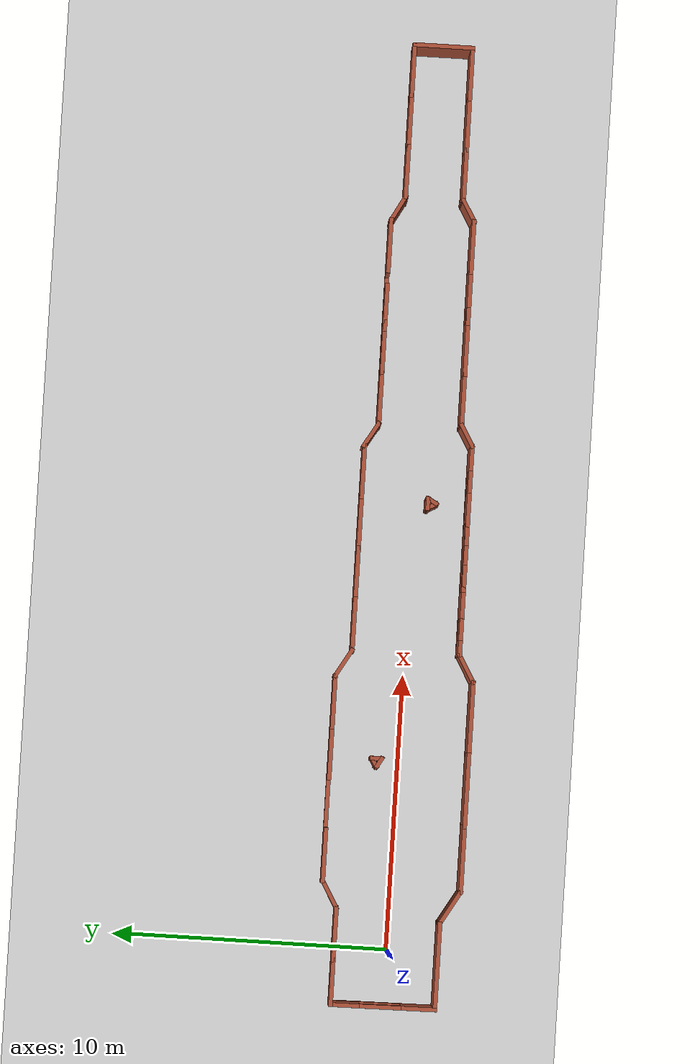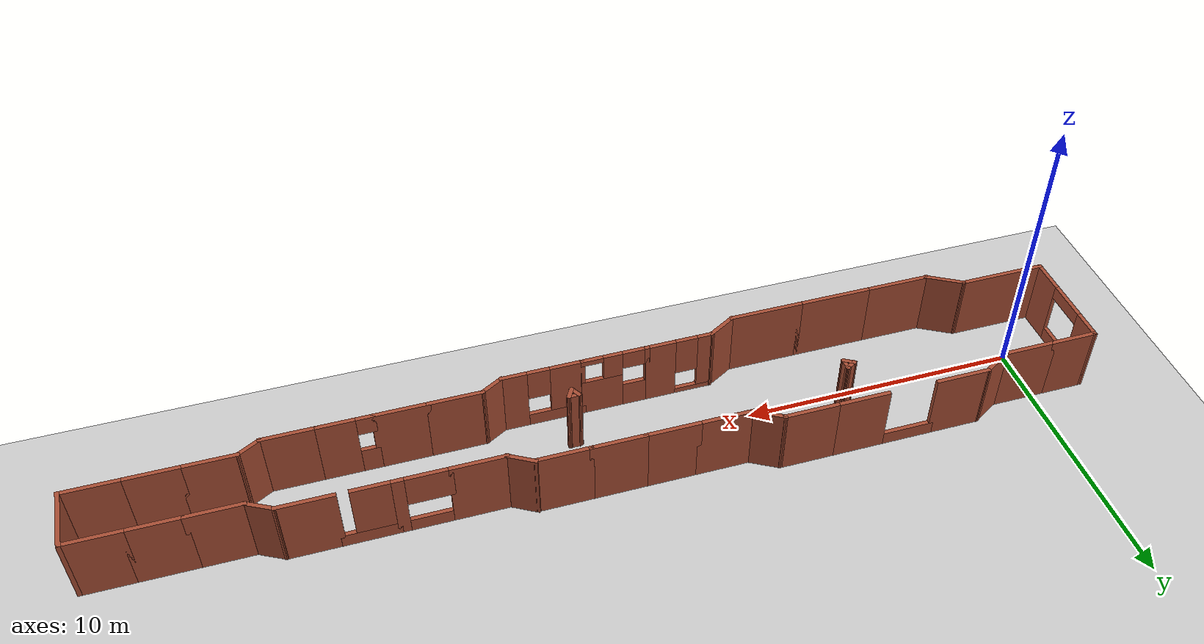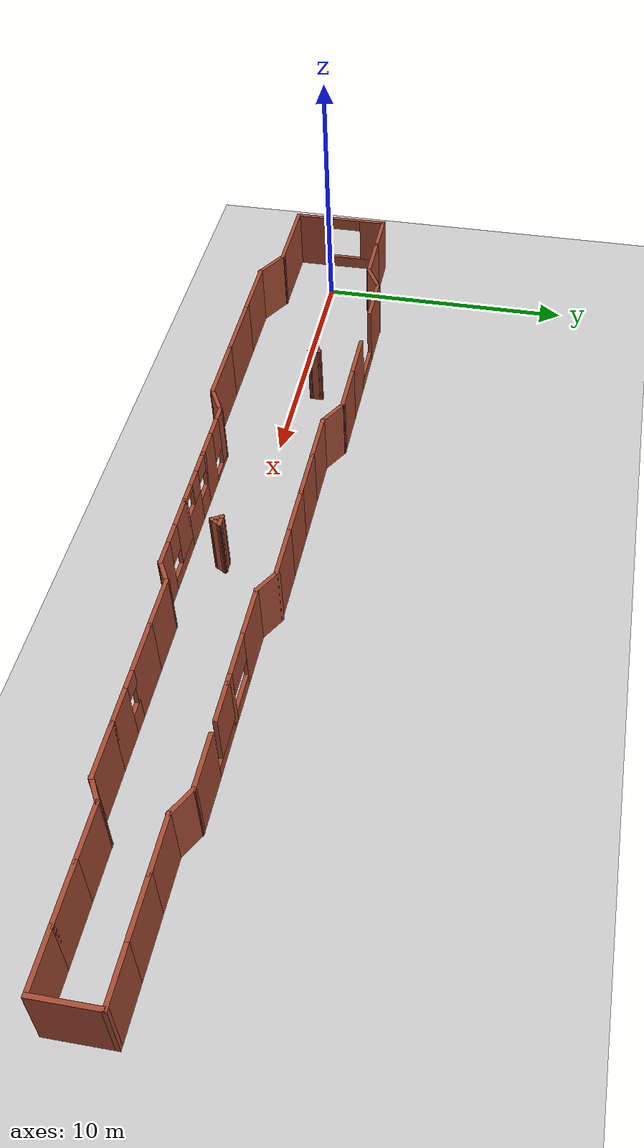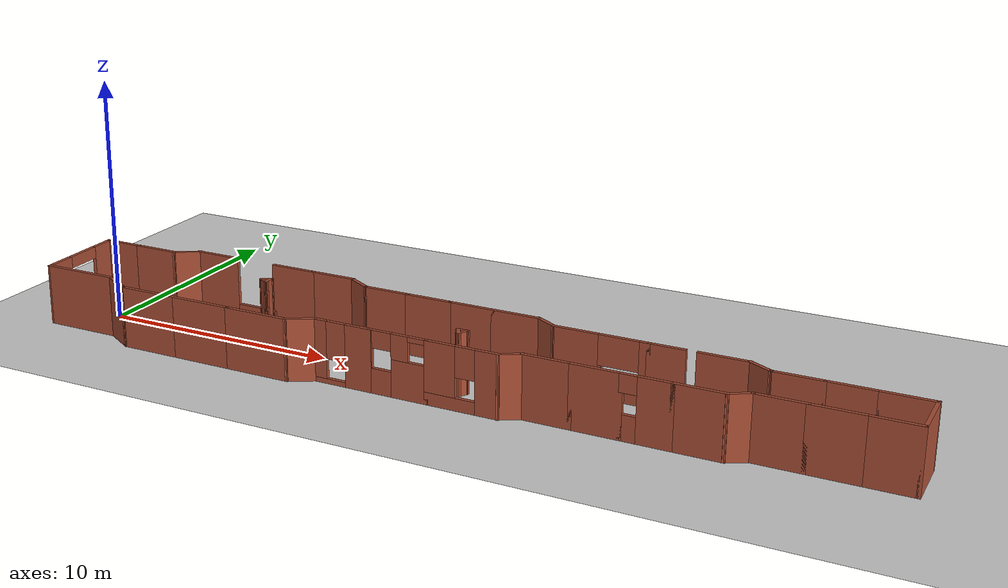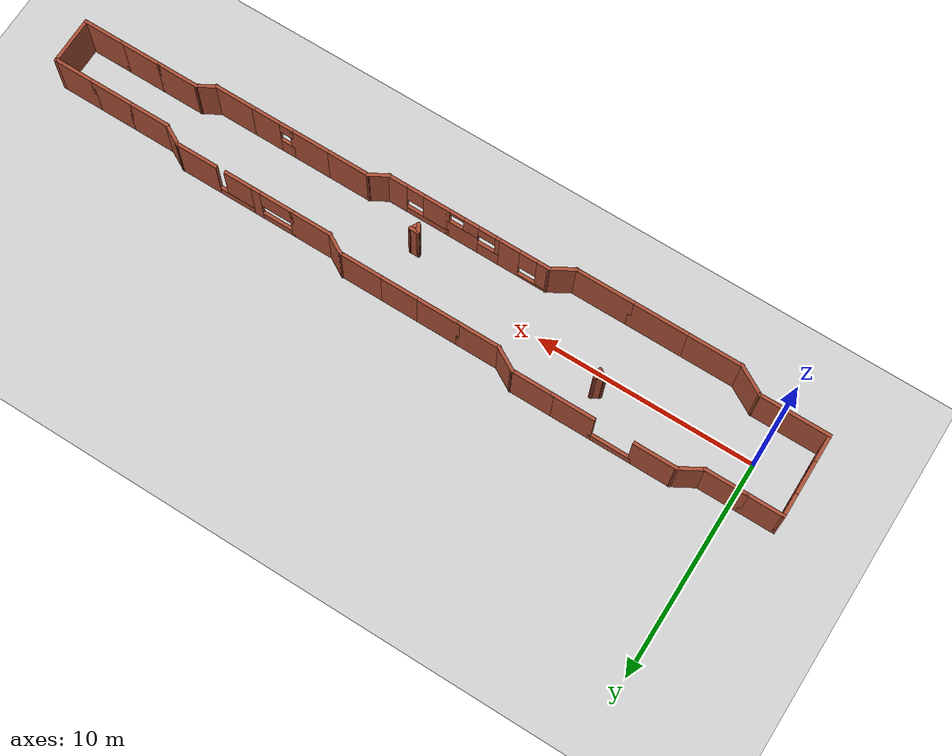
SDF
<sdf version="1.7">
 <world name="default">
  <light name="sun" type="directional">
   <pose>0 0 10 0 -0 0</pose>
   <diffuse>0.8 0.8 0.8 1</diffuse>
   <specular>0.2 0.2 0.2 1</specular>
   <attenuation>
    <range>1000</range>
    <constant>0.9</constant>
    <linear>0.01</linear>
    <quadratic>0.001</quadratic>
   </attenuation>
   <direction>-0.5 0.1 -0.9</direction>
   <spot><inner_angle>0</inner_angle><outer_angle>0</outer_angle><falloff>0</falloff></spot>
  </light>
  <model name="ground_plane">
   <static>1</static>
   <link name="link">
    <collision name="collision">
     <geometry><plane><normal>0 0 1</normal><size>100 100</size></plane></geometry>
     <surface>
      <contact><collide_bitmask>65535</collide_bitmask></contact>
      <friction><ode><mu>100</mu><mu2>50</mu2></ode></friction>
     </surface>
    </collision>
    <visual name="visual">
     <cast_shadows>0</cast_shadows>
     <geometry><plane><normal>0 0 1</normal><size>100 100</size></plane></geometry>
     <material>
      <script><uri>file://media/materials/scripts/gazebo.material</uri><name>Gazebo/Grey</name></script>
     </material>
    </visual>
   </link>
  </model>
  <gravity>0 0 -9.8</gravity>
  <magnetic_field>6e-06 2.3e-05 -4.2e-05</magnetic_field>
  <atmosphere type="adiabatic"/>
  <physics type="ode">
   <max_step_size>0.001</max_step_size>
   <real_time_factor>1</real_time_factor>
   <real_time_update_rate>1000</real_time_update_rate>
  </physics>
  <scene><ambient>0.4 0.4 0.4 1</ambient><background>0.7 0.7 0.7 1</background><shadows>1</shadows></scene>
  <spherical_coordinates>
   <surface_model>EARTH_WGS84</surface_model>
   <latitude_deg>0</latitude_deg>
   <longitude_deg>0</longitude_deg>
   <elevation>0</elevation>
   <heading_deg>0</heading_deg>
  </spherical_coordinates>
  <model name="teste_1">
   <pose>15.4066 0 0 0 -0 3.14159</pose>
   <link name="Wall_10">
    <pose>-6.36052 -1.47773 0 0 -0 0</pose>
    <visual name="Wall_10_Visual_0">
     <pose>-0.788416 0 1.25 0 -0 0</pose>
     <geometry><box><size>0.423168 0.15 2.5</size></box></geometry>
     <material>
      <script><uri>file://media/materials/scripts/gazebo.material</uri><name>Gazebo/Bricks</name></script>
      <ambient>1 1 1 1</ambient>
     </material>
     <meta><layer>0</layer></meta>
    </visual>
    <collision name="Wall_10_Collision_0">
     <geometry><box><size>0.423168 0.15 2.5</size></box></geometry>
     <pose>-0.788416 0 1.25 0 -0 0</pose>
    </collision>
    <visual name="Wall_10_Visual_1">
     <pose>0.211584 0 0.25 0 -0 0</pose>
     <geometry><box><size>1.57683 0.15 0.5</size></box></geometry>
     <material>
      <script><uri>file://media/materials/scripts/gazebo.material</uri><name>Gazebo/Bricks</name></script>
      <ambient>1 1 1 1</ambient>
     </material>
     <meta><layer>0</layer></meta>
    </visual>
    <collision name="Wall_10_Collision_1">
     <geometry><box><size>1.57683 0.15 0.5</size></box></geometry>
     <pose>0.211584 0 0.25 0 -0 0</pose>
    </collision>
    <visual name="Wall_10_Visual_2">
     <pose>0.211584 0 1.9 0 -0 0</pose>
     <geometry><box><size>1.57683 0.15 1.2</size></box></geometry>
     <material>
      <script><uri>file://media/materials/scripts/gazebo.material</uri><name>Gazebo/Bricks</name></script>
      <ambient>1 1 1 1</ambient>
     </material>
     <meta><layer>0</layer></meta>
    </visual>
    <collision name="Wall_10_Collision_2">
     <geometry><box><size>1.57683 0.15 1.2</size></box></geometry>
     <pose>0.211584 0 1.9 0 -0 0</pose>
    </collision>
   </link>
   <link name="Wall_11">
    <collision name="Wall_11_Collision">
     <geometry><box><size>2 0.15 2.5</size></box></geometry>
     <pose>0 0 1.25 0 -0 0</pose>
    </collision>
    <visual name="Wall_11_Visual">
     <pose>0 0 1.25 0 -0 0</pose>
     <geometry><box><size>2 0.15 2.5</size></box></geometry>
     <material>
      <script><uri>file://media/materials/scripts/gazebo.material</uri><name>Gazebo/Bricks</name></script>
      <ambient>1 1 1 1</ambient>
     </material>
     <meta><layer>0</layer></meta>
    </visual>
    <pose>-4.51052 -1.47773 0 0 -0 0</pose>
   </link>
   <link name="Wall_12">
    <collision name="Wall_12_Collision">
     <geometry><box><size>1.10409 0.15 2.5</size></box></geometry>
     <pose>0 0 1.25 0 -0 0</pose>
    </collision>
    <visual name="Wall_12_Visual">
     <pose>0 0 1.25 0 -0 0</pose>
     <geometry><box><size>1.10409 0.15 2.5</size></box></geometry>
     <material>
      <script><uri>file://media/materials/scripts/gazebo.material</uri><name>Gazebo/Bricks</name></script>
      <ambient>1 1 1 1</ambient>
     </material>
     <meta><layer>0</layer></meta>
    </visual>
    <pose>-3.175 -1.72073 0 0 -0 -0.534466</pose>
   </link>
   <link name="Wall_14">
    <collision name="Wall_14_Collision">
     <geometry><box><size>2 0.15 2.5</size></box></geometry>
     <pose>0 0 1.25 0 -0 0</pose>
    </collision>
    <visual name="Wall_14_Visual">
     <pose>0 0 1.25 0 -0 0</pose>
     <geometry><box><size>2 0.15 2.5</size></box></geometry>
     <material>
      <script><uri>file://media/materials/scripts/gazebo.material</uri><name>Gazebo/Bricks</name></script>
      <ambient>1 1 1 1</ambient>
     </material>
     <meta><layer>0</layer></meta>
    </visual>
    <pose>-1.83948 -1.93713 0 0 -0 0</pose>
   </link>
   <link name="Wall_16">
    <collision name="Wall_16_Collision">
     <geometry><box><size>2 0.15 2.5</size></box></geometry>
     <pose>0 0 1.25 0 -0 0</pose>
    </collision>
    <visual name="Wall_16_Visual">
     <pose>0 0 1.25 0 -0 0</pose>
     <geometry><box><size>2 0.15 2.5</size></box></geometry>
     <material>
      <script><uri>file://media/materials/scripts/gazebo.material</uri><name>Gazebo/Bricks</name></script>
      <ambient>1 1 1 1</ambient>
     </material>
     <meta><layer>0</layer></meta>
    </visual>
    <pose>0.010518 -1.93713 0 0 -0 0</pose>
   </link>
   <link name="Wall_17">
    <collision name="Wall_17_Collision">
     <geometry><box><size>2 0.15 2.5</size></box></geometry>
     <pose>0 0 1.25 0 -0 0</pose>
    </collision>
    <visual name="Wall_17_Visual">
     <pose>0 0 1.25 0 -0 0</pose>
     <geometry><box><size>2 0.15 2.5</size></box></geometry>
     <material>
      <script><uri>file://media/materials/scripts/gazebo.material</uri><name>Gazebo/Bricks</name></script>
      <ambient>1 1 1 1</ambient>
     </material>
     <meta><layer>0</layer></meta>
    </visual>
    <pose>1.86052 -1.93713 0 0 -0 0</pose>
   </link>
   <link name="Wall_18">
    <collision name="Wall_18_Collision">
     <geometry><box><size>2 0.15 2.5</size></box></geometry>
     <pose>0 0 1.25 0 -0 0</pose>
    </collision>
    <visual name="Wall_18_Visual">
     <pose>0 0 1.25 0 -0 0</pose>
     <geometry><box><size>2 0.15 2.5</size></box></geometry>
     <material>
      <script><uri>file://media/materials/scripts/gazebo.material</uri><name>Gazebo/Bricks</name></script>
      <ambient>1 1 1 1</ambient>
     </material>
     <meta><layer>0</layer></meta>
    </visual>
    <pose>3.71052 -1.93713 0 0 -0 0</pose>
   </link>
   <link name="Wall_19">
    <collision name="Wall_19_Collision">
     <geometry><box><size>1.25 0.15 2.5</size></box></geometry>
     <pose>0 0 1.25 0 -0 0</pose>
    </collision>
    <visual name="Wall_19_Visual">
     <pose>0 0 1.25 0 -0 0</pose>
     <geometry><box><size>1.25 0.15 2.5</size></box></geometry>
     <material>
      <script><uri>file://media/materials/scripts/gazebo.material</uri><name>Gazebo/Bricks</name></script>
      <ambient>1 1 1 1</ambient>
     </material>
     <meta><layer>0</layer></meta>
    </visual>
    <pose>5.11183 -2.21213 0 0 -0 -0.523599</pose>
   </link>
   <link name="Wall_2">
    <collision name="Wall_2_Collision">
     <geometry><box><size>2 0.15 2.5</size></box></geometry>
     <pose>0 0 1.25 0 -0 0</pose>
    </collision>
    <visual name="Wall_2_Visual">
     <pose>0 0 1.25 0 -0 0</pose>
     <geometry><box><size>2 0.15 2.5</size></box></geometry>
     <material>
      <script><uri>file://media/materials/scripts/gazebo.material</uri><name>Gazebo/Bricks</name></script>
      <ambient>1 1 1 1</ambient>
     </material>
     <meta><layer>0</layer></meta>
    </visual>
    <pose>-16.4665 -1.01287 0 0 -0 0</pose>
   </link>
   <link name="Wall_20">
    <collision name="Wall_20_Collision">
     <geometry><box><size>2 0.15 2.5</size></box></geometry>
     <pose>0 0 1.25 0 -0 0</pose>
    </collision>
    <visual name="Wall_20_Visual">
     <pose>0 0 1.25 0 -0 0</pose>
     <geometry><box><size>2 0.15 2.5</size></box></geometry>
     <material>
      <script><uri>file://media/materials/scripts/gazebo.material</uri><name>Gazebo/Bricks</name></script>
      <ambient>1 1 1 1</ambient>
     </material>
     <meta><layer>0</layer></meta>
    </visual>
    <pose>6.51315 -2.48713 0 0 -0 0</pose>
   </link>
   <link name="Wall_21">
    <collision name="Wall_21_Collision">
     <geometry><box><size>2 0.15 2.5</size></box></geometry>
     <pose>0 0 1.25 0 -0 0</pose>
    </collision>
    <visual name="Wall_21_Visual">
     <pose>0 0 1.25 0 -0 0</pose>
     <geometry><box><size>2 0.15 2.5</size></box></geometry>
     <material>
      <script><uri>file://media/materials/scripts/gazebo.material</uri><name>Gazebo/Bricks</name></script>
      <ambient>1 1 1 1</ambient>
     </material>
     <meta><layer>0</layer></meta>
    </visual>
    <pose>8.36315 -2.48713 0 0 -0 0</pose>
   </link>
   <link name="Wall_22">
    <pose>10.2131 -2.48713 0 0 -0 0</pose>
    <visual name="Wall_22_Visual_0">
     <pose>0 0 0.25 0 -0 0</pose>
     <geometry><box><size>2 0.15 0.5</size></box></geometry>
     <material>
      <script><uri>file://media/materials/scripts/gazebo.material</uri><name>Gazebo/Bricks</name></script>
      <ambient>1 1 1 1</ambient>
     </material>
     <meta><layer>0</layer></meta>
    </visual>
    <collision name="Wall_22_Collision_0">
     <geometry><box><size>2 0.15 0.5</size></box></geometry>
     <pose>0 0 0.25 0 -0 0</pose>
    </collision>
   </link>
   <link name="Wall_23">
    <collision name="Wall_23_Collision">
     <geometry><box><size>2 0.15 2.5</size></box></geometry>
     <pose>0 0 1.25 0 -0 0</pose>
    </collision>
    <visual name="Wall_23_Visual">
     <pose>0 0 1.25 0 -0 0</pose>
     <geometry><box><size>2 0.15 2.5</size></box></geometry>
     <material>
      <script><uri>file://media/materials/scripts/gazebo.material</uri><name>Gazebo/Bricks</name></script>
      <ambient>1 1 1 1</ambient>
     </material>
     <meta><layer>0</layer></meta>
    </visual>
    <pose>12.0631 -2.48713 0 0 -0 0</pose>
   </link>
   <link name="Wall_24">
    <collision name="Wall_24_Collision">
     <geometry><box><size>1.25 0.15 2.5</size></box></geometry>
     <pose>0 0 1.25 0 -0 0</pose>
    </collision>
    <visual name="Wall_24_Visual">
     <pose>0 0 1.25 0 -0 0</pose>
     <geometry><box><size>1.25 0.15 2.5</size></box></geometry>
     <material>
      <script><uri>file://media/materials/scripts/gazebo.material</uri><name>Gazebo/Bricks</name></script>
      <ambient>1 1 1 1</ambient>
     </material>
     <meta><layer>0</layer></meta>
    </visual>
    <pose>13.4645 -2.21213 0 0 -0 0.523599</pose>
   </link>
   <link name="Wall_25">
    <collision name="Wall_25_Collision">
     <geometry><box><size>2 0.15 2.5</size></box></geometry>
     <pose>0 0 1.25 0 -0 0</pose>
    </collision>
    <visual name="Wall_25_Visual">
     <pose>0 0 1.25 0 -0 0</pose>
     <geometry><box><size>2 0.15 2.5</size></box></geometry>
     <material>
      <script><uri>file://media/materials/scripts/gazebo.material</uri><name>Gazebo/Bricks</name></script>
      <ambient>1 1 1 1</ambient>
     </material>
     <meta><layer>0</layer></meta>
    </visual>
    <pose>14.8658 -1.93713 0 0 -0 0</pose>
   </link>
   <link name="Wall_26">
    <collision name="Wall_26_Collision">
     <geometry><box><size>1.75 0.15 2.5</size></box></geometry>
     <pose>0 0 1.25 0 -0 0</pose>
    </collision>
    <visual name="Wall_26_Visual">
     <pose>0 0 1.25 0 -0 0</pose>
     <geometry><box><size>1.75 0.15 2.5</size></box></geometry>
     <material>
      <script><uri>file://media/materials/scripts/gazebo.material</uri><name>Gazebo/Bricks</name></script>
      <ambient>1 1 1 1</ambient>
     </material>
     <meta><layer>0</layer></meta>
    </visual>
    <pose>16.5908 -1.93713 0 0 -0 0</pose>
   </link>
   <link name="Wall_28">
    <collision name="Wall_28_Collision">
     <geometry><box><size>2.25 0.15 2.5</size></box></geometry>
     <pose>0 0 1.25 0 -0 0</pose>
    </collision>
    <visual name="Wall_28_Visual">
     <pose>0 0 1.25 0 -0 0</pose>
     <geometry><box><size>2.25 0.15 2.5</size></box></geometry>
     <material>
      <script><uri>file://media/materials/scripts/gazebo.material</uri><name>Gazebo/Bricks</name></script>
      <ambient>1 1 1 1</ambient>
     </material>
     <meta><layer>0</layer></meta>
    </visual>
    <pose>-17.3915 0.037128 0 0 -0 1.5708</pose>
   </link>
   <link name="Wall_29">
    <collision name="Wall_29_Collision">
     <geometry><box><size>2 0.15 2.5</size></box></geometry>
     <pose>0 0 1.25 0 -0 0</pose>
    </collision>
    <visual name="Wall_29_Visual">
     <pose>0 0 1.25 0 -0 0</pose>
     <geometry><box><size>2 0.15 2.5</size></box></geometry>
     <material>
      <script><uri>file://media/materials/scripts/gazebo.material</uri><name>Gazebo/Bricks</name></script>
      <ambient>1 1 1 1</ambient>
     </material>
     <meta><layer>0</layer></meta>
    </visual>
    <pose>-16.4665 1.08713 0 0 -0 0</pose>
   </link>
   <link name="Wall_30">
    <collision name="Wall_30_Collision">
     <geometry><box><size>2 0.15 2.5</size></box></geometry>
     <pose>0 0 1.25 0 -0 0</pose>
    </collision>
    <visual name="Wall_30_Visual">
     <pose>0 0 1.25 0 -0 0</pose>
     <geometry><box><size>2 0.15 2.5</size></box></geometry>
     <material>
      <script><uri>file://media/materials/scripts/gazebo.material</uri><name>Gazebo/Bricks</name></script>
      <ambient>1 1 1 1</ambient>
     </material>
     <meta><layer>0</layer></meta>
    </visual>
    <pose>-14.6165 1.08713 0 0 -0 0</pose>
   </link>
   <link name="Wall_31">
    <collision name="Wall_31_Collision">
     <geometry><box><size>2 0.15 2.5</size></box></geometry>
     <pose>0 0 1.25 0 -0 0</pose>
    </collision>
    <visual name="Wall_31_Visual">
     <pose>0 0 1.25 0 -0 0</pose>
     <geometry><box><size>2 0.15 2.5</size></box></geometry>
     <material>
      <script><uri>file://media/materials/scripts/gazebo.material</uri><name>Gazebo/Bricks</name></script>
      <ambient>1 1 1 1</ambient>
     </material>
     <meta><layer>0</layer></meta>
    </visual>
    <pose>-12.7665 1.08713 0 0 -0 0</pose>
   </link>
   <link name="Wall_32">
    <collision name="Wall_32_Collision">
     <geometry><box><size>1 0.15 2.5</size></box></geometry>
     <pose>0 0 1.25 0 -0 0</pose>
    </collision>
    <visual name="Wall_32_Visual">
     <pose>0 0 1.25 0 -0 0</pose>
     <geometry><box><size>1 0.15 2.5</size></box></geometry>
     <material>
      <script><uri>file://media/materials/scripts/gazebo.material</uri><name>Gazebo/Bricks</name></script>
      <ambient>1 1 1 1</ambient>
     </material>
     <meta><layer>0</layer></meta>
    </visual>
    <pose>-11.4735 1.29963 0 0 -0 0.523599</pose>
   </link>
   <link name="Wall_33">
    <collision name="Wall_33_Collision">
     <geometry><box><size>2 0.15 2.5</size></box></geometry>
     <pose>0 0 1.25 0 -0 0</pose>
    </collision>
    <visual name="Wall_33_Visual">
     <pose>0 0 1.25 0 -0 0</pose>
     <geometry><box><size>2 0.15 2.5</size></box></geometry>
     <material>
      <script><uri>file://media/materials/scripts/gazebo.material</uri><name>Gazebo/Bricks</name></script>
      <ambient>1 1 1 1</ambient>
     </material>
     <meta><layer>0</layer></meta>
    </visual>
    <pose>-10.1804 1.51213 0 0 -0 0</pose>
   </link>
   <link name="Wall_34">
    <pose>-8.33041 1.51213 0 0 -0 0</pose>
    <visual name="Wall_34_Visual_0">
     <pose>-0.329391 0 1.25 0 -0 0</pose>
     <geometry><box><size>1.34122 0.15 2.5</size></box></geometry>
     <material>
      <script><uri>file://media/materials/scripts/gazebo.material</uri><name>Gazebo/Bricks</name></script>
      <ambient>1 1 1 1</ambient>
     </material>
     <meta><layer>0</layer></meta>
    </visual>
    <collision name="Wall_34_Collision_0">
     <geometry><box><size>1.34122 0.15 2.5</size></box></geometry>
     <pose>-0.329391 0 1.25 0 -0 0</pose>
    </collision>
    <visual name="Wall_34_Visual_1">
     <pose>0.670609 0 0.5 0 -0 0</pose>
     <geometry><box><size>0.658781 0.15 1</size></box></geometry>
     <material>
      <script><uri>file://media/materials/scripts/gazebo.material</uri><name>Gazebo/Bricks</name></script>
      <ambient>1 1 1 1</ambient>
     </material>
     <meta><layer>0</layer></meta>
    </visual>
    <collision name="Wall_34_Collision_1">
     <geometry><box><size>0.658781 0.15 1</size></box></geometry>
     <pose>0.670609 0 0.5 0 -0 0</pose>
    </collision>
    <visual name="Wall_34_Visual_2">
     <pose>0.670609 0 2.15 0 -0 0</pose>
     <geometry><box><size>0.658781 0.15 0.7</size></box></geometry>
     <material>
      <script><uri>file://media/materials/scripts/gazebo.material</uri><name>Gazebo/Bricks</name></script>
      <ambient>1 1 1 1</ambient>
     </material>
     <meta><layer>0</layer></meta>
    </visual>
    <collision name="Wall_34_Collision_2">
     <geometry><box><size>0.658781 0.15 0.7</size></box></geometry>
     <pose>0.670609 0 2.15 0 -0 0</pose>
    </collision>
   </link>
   <link name="Wall_35">
    <collision name="Wall_35_Collision">
     <geometry><box><size>2 0.15 2.5</size></box></geometry>
     <pose>0 0 1.25 0 -0 0</pose>
    </collision>
    <visual name="Wall_35_Visual">
     <pose>0 0 1.25 0 -0 0</pose>
     <geometry><box><size>2 0.15 2.5</size></box></geometry>
     <material>
      <script><uri>file://media/materials/scripts/gazebo.material</uri><name>Gazebo/Bricks</name></script>
      <ambient>1 1 1 1</ambient>
     </material>
     <meta><layer>0</layer></meta>
    </visual>
    <pose>-6.48041 1.51213 0 0 -0 0</pose>
   </link>
   <link name="Wall_36">
    <collision name="Wall_36_Collision">
     <geometry><box><size>2 0.15 2.5</size></box></geometry>
     <pose>0 0 1.25 0 -0 0</pose>
    </collision>
    <visual name="Wall_36_Visual">
     <pose>0 0 1.25 0 -0 0</pose>
     <geometry><box><size>2 0.15 2.5</size></box></geometry>
     <material>
      <script><uri>file://media/materials/scripts/gazebo.material</uri><name>Gazebo/Bricks</name></script>
      <ambient>1 1 1 1</ambient>
     </material>
     <meta><layer>0</layer></meta>
    </visual>
    <pose>-4.63041 1.51213 0 0 -0 0</pose>
   </link>
   <link name="Wall_37">
    <collision name="Wall_37_Collision">
     <geometry><box><size>1 0.15 2.5</size></box></geometry>
     <pose>0 0 1.25 0 -0 0</pose>
    </collision>
    <visual name="Wall_37_Visual">
     <pose>0 0 1.25 0 -0 0</pose>
     <geometry><box><size>1 0.15 2.5</size></box></geometry>
     <material>
      <script><uri>file://media/materials/scripts/gazebo.material</uri><name>Gazebo/Bricks</name></script>
      <ambient>1 1 1 1</ambient>
     </material>
     <meta><layer>0</layer></meta>
    </visual>
    <pose>-3.33735 1.72463 0 0 -0 0.523599</pose>
   </link>
   <link name="Wall_38">
    <pose>-1.54429 1.93713 0 0 -0 0</pose>
    <visual name="Wall_38_Visual_0">
     <pose>-1.0192 0 1.25 0 -0 0</pose>
     <geometry><box><size>0.96161 0.15 2.5</size></box></geometry>
     <material>
      <script><uri>file://media/materials/scripts/gazebo.material</uri><name>Gazebo/Bricks</name></script>
      <ambient>1 1 1 1</ambient>
     </material>
     <meta><layer>0</layer></meta>
    </visual>
    <collision name="Wall_38_Collision_0">
     <geometry><box><size>0.96161 0.15 2.5</size></box></geometry>
     <pose>-1.0192 0 1.25 0 -0 0</pose>
    </collision>
    <visual name="Wall_38_Visual_1">
     <pose>0.480805 0 0.25 0 -0 0</pose>
     <geometry><box><size>2.03839 0.15 0.5</size></box></geometry>
     <material>
      <script><uri>file://media/materials/scripts/gazebo.material</uri><name>Gazebo/Bricks</name></script>
      <ambient>1 1 1 1</ambient>
     </material>
     <meta><layer>0</layer></meta>
    </visual>
    <collision name="Wall_38_Collision_1">
     <geometry><box><size>2.03839 0.15 0.5</size></box></geometry>
     <pose>0.480805 0 0.25 0 -0 0</pose>
    </collision>
    <visual name="Wall_38_Visual_2">
     <pose>0.880805 0 1.5 0 -0 0</pose>
     <geometry><box><size>1.23839 0.15 2</size></box></geometry>
     <material>
      <script><uri>file://media/materials/scripts/gazebo.material</uri><name>Gazebo/Bricks</name></script>
      <ambient>1 1 1 1</ambient>
     </material>
     <meta><layer>0</layer></meta>
    </visual>
    <collision name="Wall_38_Collision_2">
     <geometry><box><size>1.23839 0.15 2</size></box></geometry>
     <pose>0.880805 0 1.5 0 -0 0</pose>
    </collision>
    <visual name="Wall_38_Visual_3">
     <pose>-0.13839 0 1.9 0 -0 0</pose>
     <geometry><box><size>0.8 0.15 1.2</size></box></geometry>
     <material>
      <script><uri>file://media/materials/scripts/gazebo.material</uri><name>Gazebo/Bricks</name></script>
      <ambient>1 1 1 1</ambient>
     </material>
     <meta><layer>0</layer></meta>
    </visual>
    <collision name="Wall_38_Collision_3">
     <geometry><box><size>0.8 0.15 1.2</size></box></geometry>
     <pose>-0.13839 0 1.9 0 -0 0</pose>
    </collision>
   </link>
   <link name="Wall_39">
    <pose>1.05571 1.93713 0 0 -0 0</pose>
    <visual name="Wall_39_Visual_0">
     <pose>-1.24349 0 1.25 0 -0 0</pose>
     <geometry><box><size>0.013023 0.15 2.5</size></box></geometry>
     <material>
      <script><uri>file://media/materials/scripts/gazebo.material</uri><name>Gazebo/Bricks</name></script>
      <ambient>1 1 1 1</ambient>
     </material>
     <meta><layer>0</layer></meta>
    </visual>
    <collision name="Wall_39_Collision_0">
     <geometry><box><size>0.013023 0.15 2.5</size></box></geometry>
     <pose>-1.24349 0 1.25 0 -0 0</pose>
    </collision>
    <visual name="Wall_39_Visual_1">
     <pose>-0.488549 0 0.75 0 -0 0</pose>
     <geometry><box><size>1.49686 0.15 1.5</size></box></geometry>
     <material>
      <script><uri>file://media/materials/scripts/gazebo.material</uri><name>Gazebo/Bricks</name></script>
      <ambient>1 1 1 1</ambient>
     </material>
     <meta><layer>0</layer></meta>
    </visual>
    <collision name="Wall_39_Collision_1">
     <geometry><box><size>1.49686 0.15 1.5</size></box></geometry>
     <pose>-0.488549 0 0.75 0 -0 0</pose>
    </collision>
    <visual name="Wall_39_Visual_2">
     <pose>0.75494 0 0.5 0 -0 0</pose>
     <geometry><box><size>0.99012 0.15 1</size></box></geometry>
     <material>
      <script><uri>file://media/materials/scripts/gazebo.material</uri><name>Gazebo/Bricks</name></script>
      <ambient>1 1 1 1</ambient>
     </material>
     <meta><layer>0</layer></meta>
    </visual>
    <collision name="Wall_39_Collision_2">
     <geometry><box><size>0.99012 0.15 1</size></box></geometry>
     <pose>0.75494 0 0.5 0 -0 0</pose>
    </collision>
    <visual name="Wall_39_Visual_3">
     <pose>1.15494 0 1.75 0 -0 0</pose>
     <geometry><box><size>0.19012 0.15 1.5</size></box></geometry>
     <material>
      <script><uri>file://media/materials/scripts/gazebo.material</uri><name>Gazebo/Bricks</name></script>
      <ambient>1 1 1 1</ambient>
     </material>
     <meta><layer>0</layer></meta>
    </visual>
    <collision name="Wall_39_Collision_3">
     <geometry><box><size>0.19012 0.15 1.5</size></box></geometry>
     <pose>1.15494 0 1.75 0 -0 0</pose>
    </collision>
    <visual name="Wall_39_Visual_4">
     <pose>-0.088549 0 2 0 -0 0</pose>
     <geometry><box><size>0.696857 0.15 1</size></box></geometry>
     <material>
      <script><uri>file://media/materials/scripts/gazebo.material</uri><name>Gazebo/Bricks</name></script>
      <ambient>1 1 1 1</ambient>
     </material>
     <meta><layer>0</layer></meta>
    </visual>
    <collision name="Wall_39_Collision_4">
     <geometry><box><size>0.696857 0.15 1</size></box></geometry>
     <pose>-0.088549 0 2 0 -0 0</pose>
    </collision>
    <visual name="Wall_39_Visual_5">
     <pose>0.65988 0 2.15 0 -0 0</pose>
     <geometry><box><size>0.8 0.15 0.7</size></box></geometry>
     <material>
      <script><uri>file://media/materials/scripts/gazebo.material</uri><name>Gazebo/Bricks</name></script>
      <ambient>1 1 1 1</ambient>
     </material>
     <meta><layer>0</layer></meta>
    </visual>
    <collision name="Wall_39_Collision_5">
     <geometry><box><size>0.8 0.15 0.7</size></box></geometry>
     <pose>0.65988 0 2.15 0 -0 0</pose>
    </collision>
    <visual name="Wall_39_Visual_6">
     <pose>-0.836977 0 2.4 0 -0 0</pose>
     <geometry><box><size>0.8 0.15 0.2</size></box></geometry>
     <material>
      <script><uri>file://media/materials/scripts/gazebo.material</uri><name>Gazebo/Bricks</name></script>
      <ambient>1 1 1 1</ambient>
     </material>
     <meta><layer>0</layer></meta>
    </visual>
    <collision name="Wall_39_Collision_6">
     <geometry><box><size>0.8 0.15 0.2</size></box></geometry>
     <pose>-0.836977 0 2.4 0 -0 0</pose>
    </collision>
   </link>
   <link name="Wall_4">
    <collision name="Wall_4_Collision">
     <geometry><box><size>2 0.15 2.5</size></box></geometry>
     <pose>0 0 1.25 0 -0 0</pose>
    </collision>
    <visual name="Wall_4_Visual">
     <pose>0 0 1.25 0 -0 0</pose>
     <geometry><box><size>2 0.15 2.5</size></box></geometry>
     <material>
      <script><uri>file://media/materials/scripts/gazebo.material</uri><name>Gazebo/Bricks</name></script>
      <ambient>1 1 1 1</ambient>
     </material>
     <meta><layer>0</layer></meta>
    </visual>
    <pose>-14.6165 -1.01287 0 0 -0 0</pose>
   </link>
   <link name="Wall_40">
    <pose>3.40571 1.93713 0 0 -0 0</pose>
    <visual name="Wall_40_Visual_0">
     <pose>-0.699126 0 1.25 0 -0 0</pose>
     <geometry><box><size>1.10175 0.15 2.5</size></box></geometry>
     <material>
      <script><uri>file://media/materials/scripts/gazebo.material</uri><name>Gazebo/Bricks</name></script>
      <ambient>1 1 1 1</ambient>
     </material>
     <meta><layer>0</layer></meta>
    </visual>
    <collision name="Wall_40_Collision_0">
     <geometry><box><size>1.10175 0.15 2.5</size></box></geometry>
     <pose>-0.699126 0 1.25 0 -0 0</pose>
    </collision>
    <visual name="Wall_40_Visual_1">
     <pose>0.550874 0 0.1 0 -0 0</pose>
     <geometry><box><size>1.39825 0.15 0.2</size></box></geometry>
     <material>
      <script><uri>file://media/materials/scripts/gazebo.material</uri><name>Gazebo/Bricks</name></script>
      <ambient>1 1 1 1</ambient>
     </material>
     <meta><layer>0</layer></meta>
    </visual>
    <collision name="Wall_40_Collision_1">
     <geometry><box><size>1.39825 0.15 0.2</size></box></geometry>
     <pose>0.550874 0 0.1 0 -0 0</pose>
    </collision>
    <visual name="Wall_40_Visual_2">
     <pose>0.950874 0 1.35 0 -0 0</pose>
     <geometry><box><size>0.598253 0.15 2.3</size></box></geometry>
     <material>
      <script><uri>file://media/materials/scripts/gazebo.material</uri><name>Gazebo/Bricks</name></script>
      <ambient>1 1 1 1</ambient>
     </material>
     <meta><layer>0</layer></meta>
    </visual>
    <collision name="Wall_40_Collision_2">
     <geometry><box><size>0.598253 0.15 2.3</size></box></geometry>
     <pose>0.950874 0 1.35 0 -0 0</pose>
    </collision>
    <visual name="Wall_40_Visual_3">
     <pose>0.251747 0 1.75 0 -0 0</pose>
     <geometry><box><size>0.8 0.15 1.5</size></box></geometry>
     <material>
      <script><uri>file://media/materials/scripts/gazebo.material</uri><name>Gazebo/Bricks</name></script>
      <ambient>1 1 1 1</ambient>
     </material>
     <meta><layer>0</layer></meta>
    </visual>
    <collision name="Wall_40_Collision_3">
     <geometry><box><size>0.8 0.15 1.5</size></box></geometry>
     <pose>0.251747 0 1.75 0 -0 0</pose>
    </collision>
   </link>
   <link name="Wall_41">
    <collision name="Wall_41_Collision">
     <geometry><box><size>1.25 0.15 2.5</size></box></geometry>
     <pose>0 0 1.25 0 -0 0</pose>
    </collision>
    <visual name="Wall_41_Visual">
     <pose>0 0 1.25 0 -0 0</pose>
     <geometry><box><size>1.25 0.15 2.5</size></box></geometry>
     <material>
      <script><uri>file://media/materials/scripts/gazebo.material</uri><name>Gazebo/Bricks</name></script>
      <ambient>1 1 1 1</ambient>
     </material>
     <meta><layer>0</layer></meta>
    </visual>
    <pose>5.05702 2.21213 0 0 -0 0.523599</pose>
   </link>
   <link name="Wall_42">
    <collision name="Wall_42_Collision">
     <geometry><box><size>2.75 0.15 2.5</size></box></geometry>
     <pose>0 0 1.25 0 -0 0</pose>
    </collision>
    <visual name="Wall_42_Visual">
     <pose>0 0 1.25 0 -0 0</pose>
     <geometry><box><size>2.75 0.15 2.5</size></box></geometry>
     <material>
      <script><uri>file://media/materials/scripts/gazebo.material</uri><name>Gazebo/Bricks</name></script>
      <ambient>1 1 1 1</ambient>
     </material>
     <meta><layer>0</layer></meta>
    </visual>
    <pose>6.83334 2.48713 0 0 -0 0</pose>
   </link>
   <link name="Wall_43">
    <collision name="Wall_43_Collision">
     <geometry><box><size>2.75 0.15 2.5</size></box></geometry>
     <pose>0 0 1.25 0 -0 0</pose>
    </collision>
    <visual name="Wall_43_Visual">
     <pose>0 0 1.25 0 -0 0</pose>
     <geometry><box><size>2.75 0.15 2.5</size></box></geometry>
     <material>
      <script><uri>file://media/materials/scripts/gazebo.material</uri><name>Gazebo/Bricks</name></script>
      <ambient>1 1 1 1</ambient>
     </material>
     <meta><layer>0</layer></meta>
    </visual>
    <pose>9.43334 2.48713 0 0 -0 0</pose>
   </link>
   <link name="Wall_44">
    <collision name="Wall_44_Collision">
     <geometry><box><size>2.5 0.15 2.5</size></box></geometry>
     <pose>0 0 1.25 0 -0 0</pose>
    </collision>
    <visual name="Wall_44_Visual">
     <pose>0 0 1.25 0 -0 0</pose>
     <geometry><box><size>2.5 0.15 2.5</size></box></geometry>
     <material>
      <script><uri>file://media/materials/scripts/gazebo.material</uri><name>Gazebo/Bricks</name></script>
      <ambient>1 1 1 1</ambient>
     </material>
     <meta><layer>0</layer></meta>
    </visual>
    <pose>11.9083 2.48713 0 0 -0 0</pose>
   </link>
   <link name="Wall_5">
    <collision name="Wall_5_Collision">
     <geometry><box><size>2 0.15 2.5</size></box></geometry>
     <pose>0 0 1.25 0 -0 0</pose>
    </collision>
    <visual name="Wall_5_Visual">
     <pose>0 0 1.25 0 -0 0</pose>
     <geometry><box><size>2 0.15 2.5</size></box></geometry>
     <material>
      <script><uri>file://media/materials/scripts/gazebo.material</uri><name>Gazebo/Bricks</name></script>
      <ambient>1 1 1 1</ambient>
     </material>
     <meta><layer>0</layer></meta>
    </visual>
    <pose>-12.7665 -1.01287 0 0 -0 0</pose>
   </link>
   <link name="Wall_51">
    <collision name="Wall_51_Collision">
     <geometry><box><size>1.5 0.15 2.5</size></box></geometry>
     <pose>0 0 1.25 0 -0 0</pose>
    </collision>
    <visual name="Wall_51_Visual">
     <pose>0 0 1.25 0 -0 0</pose>
     <geometry><box><size>1.5 0.15 2.5</size></box></geometry>
     <material>
      <script><uri>file://media/materials/scripts/gazebo.material</uri><name>Gazebo/Bricks</name></script>
      <ambient>1 1 1 1</ambient>
     </material>
     <meta><layer>0</layer></meta>
    </visual>
    <pose>13.6679 2.14963 0 0 -0 -0.523599</pose>
   </link>
   <link name="Wall_52">
    <collision name="Wall_52_Collision">
     <geometry><box><size>3.25 0.15 2.5</size></box></geometry>
     <pose>0 0 1.25 0 -0 0</pose>
    </collision>
    <visual name="Wall_52_Visual">
     <pose>0 0 1.25 0 -0 0</pose>
     <geometry><box><size>3.25 0.15 2.5</size></box></geometry>
     <material>
      <script><uri>file://media/materials/scripts/gazebo.material</uri><name>Gazebo/Bricks</name></script>
      <ambient>1 1 1 1</ambient>
     </material>
     <meta><layer>0</layer></meta>
    </visual>
    <pose>15.8025 1.81213 0 0 -0 0</pose>
   </link>
   <link name="Wall_53">
    <pose>17.3716 -0.0625 0 0 -0 -1.56058</pose>
    <visual name="Wall_53_Visual_0">
     <pose>-1.29943 0 1.25 0 -0 0</pose>
     <geometry><box><size>1.30058 0.15 2.5</size></box></geometry>
     <material>
      <script><uri>file://media/materials/scripts/gazebo.material</uri><name>Gazebo/Bricks</name></script>
      <ambient>1 1 1 1</ambient>
     </material>
     <meta><layer>0</layer></meta>
    </visual>
    <collision name="Wall_53_Collision_0">
     <geometry><box><size>1.30058 0.15 2.5</size></box></geometry>
     <pose>-1.29943 0 1.25 0 -0 0</pose>
    </collision>
    <visual name="Wall_53_Visual_1">
     <pose>0.65029 0 0.25 0 -0 0</pose>
     <geometry><box><size>2.59887 0.15 0.5</size></box></geometry>
     <material>
      <script><uri>file://media/materials/scripts/gazebo.material</uri><name>Gazebo/Bricks</name></script>
      <ambient>1 1 1 1</ambient>
     </material>
     <meta><layer>0</layer></meta>
    </visual>
    <collision name="Wall_53_Collision_1">
     <geometry><box><size>2.59887 0.15 0.5</size></box></geometry>
     <pose>0.65029 0 0.25 0 -0 0</pose>
    </collision>
    <visual name="Wall_53_Visual_2">
     <pose>1.40029 0 1.5 0 -0 0</pose>
     <geometry><box><size>1.09887 0.15 2</size></box></geometry>
     <material>
      <script><uri>file://media/materials/scripts/gazebo.material</uri><name>Gazebo/Bricks</name></script>
      <ambient>1 1 1 1</ambient>
     </material>
     <meta><layer>0</layer></meta>
    </visual>
    <collision name="Wall_53_Collision_2">
     <geometry><box><size>1.09887 0.15 2</size></box></geometry>
     <pose>1.40029 0 1.5 0 -0 0</pose>
    </collision>
    <visual name="Wall_53_Visual_3">
     <pose>0.100855 0 2.25 0 -0 0</pose>
     <geometry><box><size>1.5 0.15 0.5</size></box></geometry>
     <material>
      <script><uri>file://media/materials/scripts/gazebo.material</uri><name>Gazebo/Bricks</name></script>
      <ambient>1 1 1 1</ambient>
     </material>
     <meta><layer>0</layer></meta>
    </visual>
    <collision name="Wall_53_Collision_3">
     <geometry><box><size>1.5 0.15 0.5</size></box></geometry>
     <pose>0.100855 0 2.25 0 -0 0</pose>
    </collision>
   </link>
   <link name="Wall_6">
    <collision name="Wall_6_Collision">
     <geometry><box><size>1.12409 0.15 2.5</size></box></geometry>
     <pose>0 0 1.25 0 -0 0</pose>
    </collision>
    <visual name="Wall_6_Visual">
     <pose>0 0 1.25 0 -0 0</pose>
     <geometry><box><size>1.12409 0.15 2.5</size></box></geometry>
     <material>
      <script><uri>file://media/materials/scripts/gazebo.material</uri><name>Gazebo/Bricks</name></script>
      <ambient>1 1 1 1</ambient>
     </material>
     <meta><layer>0</layer></meta>
    </visual>
    <pose>-11.4135 -1.2453 0 0 -0 -0.497489</pose>
   </link>
   <link name="Wall_7">
    <collision name="Wall_7_Collision">
     <geometry><box><size>2 0.15 2.5</size></box></geometry>
     <pose>0 0 1.25 0 -0 0</pose>
    </collision>
    <visual name="Wall_7_Visual">
     <pose>0 0 1.25 0 -0 0</pose>
     <geometry><box><size>2 0.15 2.5</size></box></geometry>
     <material>
      <script><uri>file://media/materials/scripts/gazebo.material</uri><name>Gazebo/Bricks</name></script>
      <ambient>1 1 1 1</ambient>
     </material>
     <meta><layer>0</layer></meta>
    </visual>
    <pose>-10.0605 -1.47773 0 0 -0 0</pose>
   </link>
   <link name="Wall_9">
    <pose>-8.21052 -1.47773 0 0 -0 0</pose>
    <visual name="Wall_9_Visual_0">
     <pose>0 0 0.25 0 -0 0</pose>
     <geometry><box><size>2 0.15 0.5</size></box></geometry>
     <material>
      <script><uri>file://media/materials/scripts/gazebo.material</uri><name>Gazebo/Bricks</name></script>
      <ambient>1 1 1 1</ambient>
     </material>
     <meta><layer>0</layer></meta>
    </visual>
    <collision name="Wall_9_Collision_0">
     <geometry><box><size>2 0.15 0.5</size></box></geometry>
     <pose>0 0 0.25 0 -0 0</pose>
    </collision>
    <visual name="Wall_9_Visual_1">
     <pose>0.262233 0 1.5 0 -0 0</pose>
     <geometry><box><size>1.47553 0.15 2</size></box></geometry>
     <material>
      <script><uri>file://media/materials/scripts/gazebo.material</uri><name>Gazebo/Bricks</name></script>
      <ambient>1 1 1 1</ambient>
     </material>
     <meta><layer>0</layer></meta>
    </visual>
    <collision name="Wall_9_Collision_1">
     <geometry><box><size>1.47553 0.15 2</size></box></geometry>
     <pose>0.262233 0 1.5 0 -0 0</pose>
    </collision>
   </link>
   <static>1</static>
  </model>
  <model name="coluna">
   <pose>10.2388 -0.672613 0 0 0 -1.5708</pose>
   <link name="Wall_1">
    <collision name="Wall_1_Collision">
     <geometry><box><size>0.5 0.15 2.5</size></box></geometry>
     <pose>0 0 1.25 0 -0 0</pose>
    </collision>
    <visual name="Wall_1_Visual">
     <pose>0 0 1.25 0 -0 0</pose>
     <geometry><box><size>0.5 0.15 2.5</size></box></geometry>
     <material>
      <script><uri>file://media/materials/scripts/gazebo.material</uri><name>Gazebo/Bricks</name></script>
      <ambient>1 1 1 1</ambient>
     </material>
     <meta><layer>0</layer></meta>
    </visual>
    <pose>-1.47874 -3.30347 0 0 -0 0</pose>
   </link>
   <link name="Wall_2">
    <collision name="Wall_2_Collision">
     <geometry><box><size>0.5 0.15 2.5</size></box></geometry>
     <pose>0 0 1.25 0 -0 0</pose>
    </collision>
    <visual name="Wall_2_Visual">
     <pose>0 0 1.25 0 -0 0</pose>
     <geometry><box><size>0.5 0.15 2.5</size></box></geometry>
     <material>
      <script><uri>file://media/materials/scripts/gazebo.material</uri><name>Gazebo/Bricks</name></script>
      <ambient>1 1 1 1</ambient>
     </material>
     <meta><layer>0</layer></meta>
    </visual>
    <pose>-1.39124 -3.45502 0 0 -0 -2.0944</pose>
   </link>
   <link name="Wall_3">
    <collision name="Wall_3_Collision">
     <geometry><box><size>0.5 0.15 2.5</size></box></geometry>
     <pose>0 0 1.25 0 -0 0</pose>
    </collision>
    <visual name="Wall_3_Visual">
     <pose>0 0 1.25 0 -0 0</pose>
     <geometry><box><size>0.5 0.15 2.5</size></box></geometry>
     <material>
      <script><uri>file://media/materials/scripts/gazebo.material</uri><name>Gazebo/Bricks</name></script>
      <ambient>1 1 1 1</ambient>
     </material>
     <meta><layer>0</layer></meta>
    </visual>
    <pose>-1.56624 -3.45502 0 0 -0 2.0944</pose>
   </link>
   <static>1</static>
  </model>
  <model name="coluna_0">
   <pose>17.7044 2.83774 0 0 -0 0</pose>
   <link name="Wall_1">
    <collision name="Wall_1_Collision">
     <geometry><box><size>0.5 0.15 2.5</size></box></geometry>
     <pose>0 0 1.25 0 -0 0</pose>
    </collision>
    <visual name="Wall_1_Visual">
     <pose>0 0 1.25 0 -0 0</pose>
     <geometry><box><size>0.5 0.15 2.5</size></box></geometry>
     <material>
      <script><uri>file://media/materials/scripts/gazebo.material</uri><name>Gazebo/Bricks</name></script>
      <ambient>1 1 1 1</ambient>
     </material>
     <meta><layer>0</layer></meta>
    </visual>
    <pose>-1.47874 -3.30347 0 0 -0 0</pose>
   </link>
   <link name="Wall_2">
    <collision name="Wall_2_Collision">
     <geometry><box><size>0.5 0.15 2.5</size></box></geometry>
     <pose>0 0 1.25 0 -0 0</pose>
    </collision>
    <visual name="Wall_2_Visual">
     <pose>0 0 1.25 0 -0 0</pose>
     <geometry><box><size>0.5 0.15 2.5</size></box></geometry>
     <material>
      <script><uri>file://media/materials/scripts/gazebo.material</uri><name>Gazebo/Bricks</name></script>
      <ambient>1 1 1 1</ambient>
     </material>
     <meta><layer>0</layer></meta>
    </visual>
    <pose>-1.39124 -3.45502 0 0 -0 -2.0944</pose>
   </link>
   <link name="Wall_3">
    <collision name="Wall_3_Collision">
     <geometry><box><size>0.5 0.15 2.5</size></box></geometry>
     <pose>0 0 1.25 0 -0 0</pose>
    </collision>
    <visual name="Wall_3_Visual">
     <pose>0 0 1.25 0 -0 0</pose>
     <geometry><box><size>0.5 0.15 2.5</size></box></geometry>
     <material>
      <script><uri>file://media/materials/scripts/gazebo.material</uri><name>Gazebo/Bricks</name></script>
      <ambient>1 1 1 1</ambient>
     </material>
     <meta><layer>0</layer></meta>
    </visual>
    <pose>-1.56624 -3.45502 0 0 -0 2.0944</pose>
   </link>
   <static>1</static>
  </model>
 </world>
</sdf>
